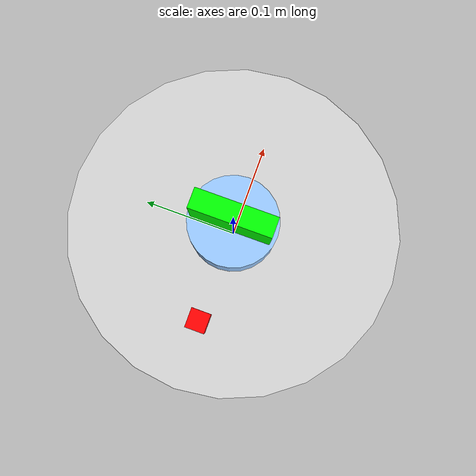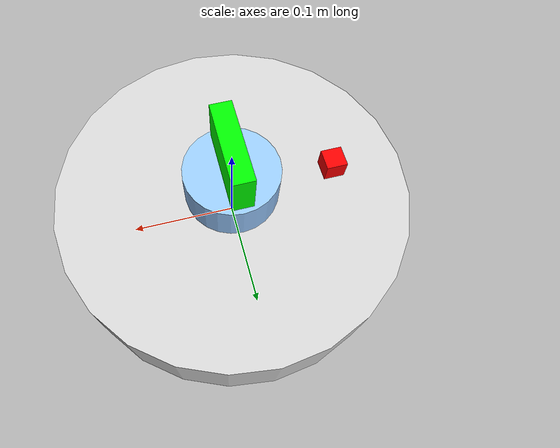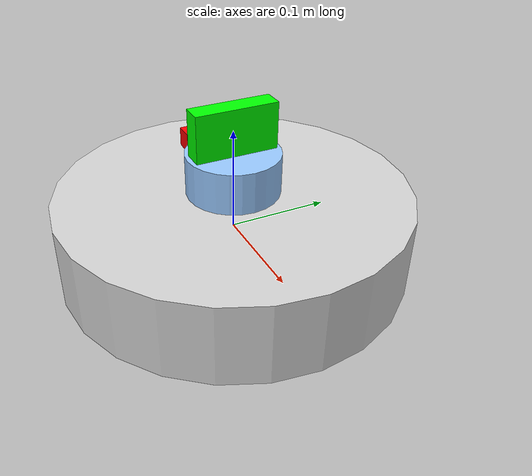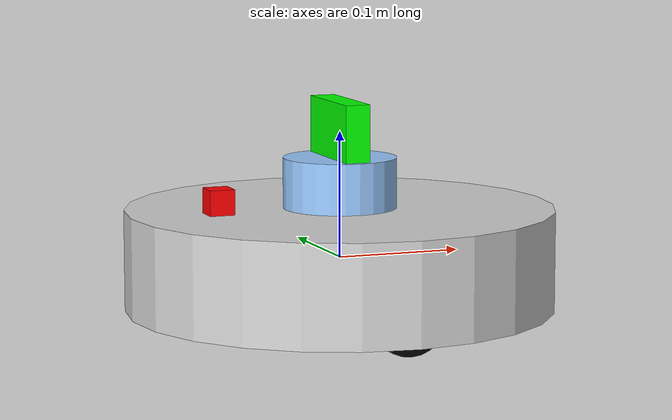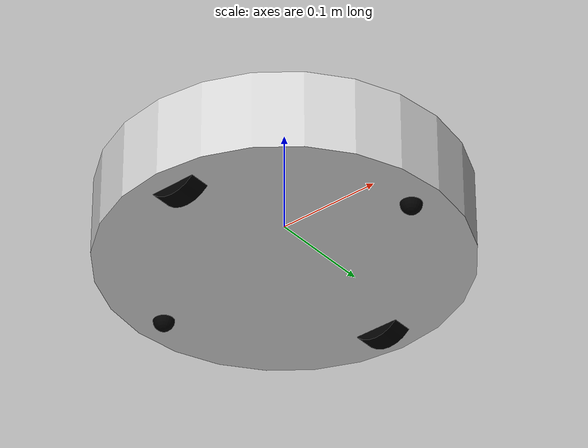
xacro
<?xml version="1.0"?>
<robot xmlns:xacro="http://www.ros.org/wiki/xacro" name="iRobot">

  <!-- MODELS -->
  <xacro:include filename="$(find irobotcreate2)/model/materials.urdf"/>
  <xacro:include filename="$(find irobotcreate2)/model/axis.urdf.xacro"/>
  <xacro:include filename="$(find irobotcreate2)/model/wheel.urdf.xacro"/>
  <xacro:include filename="$(find irobotcreate2)/model/shelf.urdf.xacro"/>
  <xacro:include filename="$(find irobotcreate2)/gazebo/iRobot.gazebo.xacro"/>
  <xacro:include filename="$(find irobotcreate2)/model/hokuyo.urdf.xacro"/>
  <xacro:include filename="$(find irobotcreate2)/model/imu.urdf.xacro"/>
  <xacro:include filename="$(find irobotcreate2)/model/camera.urdf.xacro"/>

  <xacro:property name="pi" value="3.1415926535897931"/>
  <xacro:property name="wheel_mass" value="0.5"/>
  <xacro:property name="sphere_mass" value="0.3"/>

  <link name="base_link">
    <inertial>
        <origin xyz="0 0 0" rpy="0 0 0"/>
        <mass value="0"/>
        <inertia ixx="0.0" ixy="0.0" ixz="0.0" iyy="0.0" iyz="0.0" izz="0.0"/>
    </inertial>
    </link>
    <joint name="base_joint" type="fixed">
        <origin xyz="0 0 0" rpy="0 0 0" />
        <parent link="base_link"/>
        <child link="chassis"/>
    </joint>
    <link name="chassis">
        <inertial>
            <origin xyz="0 0 0" rpy="0 0 0"/>
            <mass value="10"/>
             <inertia ixx="${1/12*10*3*0.17**2+1/12*5*3*0.08**2}" ixy="0.0" ixz="0.0" iyy="${1/12*10*3*0.17**2+1/12*5*3*0.08**2}" iyz="0.0" izz="${1/2*10*0.17**2}"/>
        </inertial>
        <visual>
            <origin xyz="0 0 0" rpy="0 0 0"/>
            <geometry>
                <cylinder length="0.08" radius="0.17"/>
            </geometry>
            <material name="iRobot/LightGrey"/>
        </visual>
        <collision>
            <origin xyz="0 0 0" rpy="0 0 0"/>
            <geometry>
                <cylinder length="0.08" radius="0.17"/>
            </geometry>
        </collision>
    </link>

    <xacro:model_axis name="left_axis"
                      parent="chassis">
    <origin xyz="0 0.14 -0.02" rpy="0 0 0"/>
    </xacro:model_axis>

   <xacro:model_wheel name="left_wheel"
                      parent="left_axis"
                      radius="0.03"
                      width="0.02"
                      mass="${wheel_mass}">
    <origin xyz="0 0 0" rpy="0 0 0"/>
    </xacro:model_wheel>

    <xacro:model_axis name="right_axis"
                      parent="chassis">
    <origin xyz="0 -0.14 -0.02" rpy="0 0 0"/>
    </xacro:model_axis>

    <xacro:model_wheel name="right_wheel"
                      parent="right_axis"
                      radius="0.03"
                      width="0.02"
                      mass="${wheel_mass}">
    <origin xyz="0 0 0" rpy="0 0 0"/>
    </xacro:model_wheel>

    <joint name="sphere_joint1" type="revolute">
        <origin xyz="0.14 0 -0.04" rpy="0 0 0"/>
        <axis xyz="0 0 1"/>
        <limit lower="0" upper="0" effort="100" velocity="100"/>
        <parent link="chassis"/>
        <child link="sphere1"/>
    </joint>
    <link name="sphere1">
        <inertial>
            <origin xyz="0 0 0" rpy="0 0 0"/>
            <mass value="${sphere_mass}"/>
            <inertia ixx="${2/5*sphere_mass*0.01**2}" ixy="0.0" ixz="0.0" iyy="${2/5*sphere_mass*0.01**2}" iyz="0.0" izz="${2/5*sphere_mass*0.01**2}"/>
        </inertial>
        <visual>
            <origin xyz="0 0 0" rpy="0 0 0"/>
            <geometry>
                <sphere radius="0.01"/>
            </geometry>
            <material name="iRobot/Black"/>
        </visual>
        <collision>
            <origin xyz="0 0 0" rpy="0 0 0"/>
            <geometry>
                <sphere radius="0.01"/>
            </geometry>
        </collision>
    </link>

    <joint name="sphere_joint2" type="revolute">
        <origin xyz="-0.14 0 -0.04" rpy="0 0 0"/>
        <axis xyz="0 0 1"/>
        <limit lower="0" upper="0" effort="100" velocity="100"/>
        <parent link="chassis"/>
        <child link="sphere2"/>
    </joint>
    <link name="sphere2">
        <inertial>
            <origin xyz="0 0 0" rpy="0 0 0"/>
            <mass value="${sphere_mass}"/>
            <inertia ixx="${2/5*sphere_mass*0.01**2}" ixy="0.0" ixz="0.0" iyy="${2/5*sphere_mass*0.01**2}" iyz="0.0" izz="${2/5*sphere_mass*0.01**2}"/>
        </inertial>
        <visual>
            <origin xyz="0 0 0" rpy="0 0 0"/>
            <geometry>
                <sphere radius="0.01"/>
            </geometry>
            <material name="iRobot/Black"/>
        </visual>
        <collision>
            <origin xyz="0 0 0" rpy="0 0 0"/>
            <geometry>
                <sphere radius="0.01"/>
            </geometry>
        </collision>
    </link>

    <!-- Laser link and plugin -->
    <xacro:hokuyo_laser xyz="0 0 ${0.04 + 0.02}"
                  rpy="0 0 0"
                  parent="base_link">
    </xacro:hokuyo_laser>

    <!--Imu link and plugin-->
    <xacro:imu_sensor xyz="-0.1 0 ${0.04 + 0.01}"
                  rpy="0 0 0"
                  parent="base_link">
    </xacro:imu_sensor>

    <!--Camera link and plugin-->
    <xacro:camera_sensor xyz="0 0 ${0.04 + 0.02 + 0.04}"
                  rpy="0 0 0"
                  parent="base_link">
    </xacro:camera_sensor>

    <xacro:iRobot_gazebo />
</robot>

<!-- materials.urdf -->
<robot>
  <material name="iRobot/Green">
    <color rgba="0.0 1.0 0.0 1.0"/>
  </material>

  <material name="iRobot/Yellow">
    <color rgba="1.0 1.0 0.0 1.0"/>
  </material>

  <material name="iRobot/LightYellow">
    <color rgba="1.0 1.0 0.6 1.0"/>
  </material>

  <material name="iRobot/Blue">
    <color rgba="0.0 0.0 1.0 1.0"/>
  </material>

  <material name="iRobot/LightBlue">
    <color rgba="0.6 0.79 1.0 1.0"/>
  </material>

  <material name="iRobot/DarkGrey">
    <color rgba="0.31 0.31 0.31 1.0"/>
  </material>

  <material name="iRobot/LightGrey">
    <color rgba="0.83 0.83 0.83 1.0"/>
  </material>

  <material name="iRobot/MediumGrey">
    <color rgba="0.5 0.5 0.5 1.0"/>
  </material>

  <material name="iRobot/Black">
    <color rgba="0.0 0.0 0.0 1.0"/>
  </material>

  <material name="iRobot/Red">
    <color rgba="1.0 0.0 0.0 1.0"/>
  </material>

  <material name="iRobot/Orange">
    <color rgba="1.0 0.65 0.0 1.0"/>
  </material>
</robot>

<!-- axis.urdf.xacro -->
<robot xmlns:xacro="http://www.ros.org/wiki/xacro" name="axis">

    <xacro:include filename="$(find irobotcreate2)/gazebo/axis.gazebo.xacro"/>

    <xacro:property name="pi" value="3.1415926535897931"/>
    <xacro:property name="small_mass" value="0.001"/>

    <xacro:macro name="model_axis" params="name parent *origin">
        <joint name="${name}_base_joint" type="fixed">
            <insert_block name="origin"/>
            <parent link="${parent}"/>
            <child link="${name}"/>
        </joint>
        <link name="${name}">
            <inertial>
                <origin xyz="0 0 0" rpy="${-pi/2} 0 0"/>
                <mass value="${small_mass}"/>
                <inertia ixx="${1/12*small_mass*3*0.0025**2+1/12*small_mass*0.02**2}" ixy="0.0" ixz="0.0" iyy="${1/12*small_mass*3*0.0025**2+1/12*small_mass*0.02**2}" iyz="0.0"
                                izz="${1/12*small_mass*0.0025**2}"/>
            </inertial>
        <visual>
            <origin xyz="0 0 0" rpy="${-pi/2} 0 0"/>
            <geometry>
                <cylinder length="0.02" radius="0.0025"/>
            </geometry>
            <material name="iRobot/MediumGray"/>
        </visual>
        <collision>
            <origin xyz="0 0 0" rpy="${-pi/2} 0 0"/>
            <geometry>
                <cylinder length="0.02" radius="0.0025"/>
            </geometry>
            </collision>
        </link>

        <xacro:axis_gazebo name="${name}"/>

    </xacro:macro>
</robot>

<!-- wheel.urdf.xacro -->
<robot xmlns:xacro="http://www.ros.org/wiki/xacro" name="wheel">

<xacro:include filename="$(find irobotcreate2)/gazebo/wheel.gazebo.xacro"/>

<xacro:property name="pi" value="3.1415926535897931"/>

<xacro:macro name="model_wheel" params="name parent radius width mass *origin">
    <joint name="${name}_rot_joint" type="continuous">
        <insert_block name="origin"/>
        <axis xyz="0 1 0"/>
        <limit effort="100" velocity="100"/>
        <joint_properties damping="0.0" friction="0.0"/>
        <parent link="${parent}"/>
        <child link="${name}_link"/>
    </joint>
    <link name="${name}_link">
        <inertial>
            <origin xyz="0 0.01 0" rpy="${-pi/2} 0 0"/>
            <mass value="${mass}"/>
            <inertia ixx="${1/12*mass*3*radius**2+1/12*mass*width**2}" ixy="0.0" ixz="0.0" iyy="${1/12*mass*3*radius**2+1/12*mass*width**2}" iyz="0.0" izz="${1/12*mass*radius**2}"/>
        </inertial>
        <visual>
            <origin xyz="0 0 0" rpy="${-pi/2} 0 0"/>
            <geometry>
                <cylinder length="${width}" radius="${radius}"/>
            </geometry>
            <material name="iRobot/Black"/>
        </visual>
        <collision>
            <origin xyz="0 0 0" rpy="${-pi/2} 0 0"/>
            <geometry>
                <cylinder length="${width}" radius="${radius}"/>
            </geometry>
        </collision>
    </link>

    <xacro:wheel_gazebo name="${name}"/>

</xacro:macro>
</robot>

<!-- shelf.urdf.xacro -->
<robot xmlns:xacro="http://www.ros.org/wiki/xacro" name="shelf">

<xacro:property name="pi" value="3.1415926535897931"/>
<xacro:property name="width_shelf" value="0.005" />
<xacro:property name="radius" value="0.002" />

<xacro:macro name="model_shelf" params="name parent height">
    <joint name="${name}1_rot_joint" type="fixed">
        <origin xyz="0.1 0.1 ${height/2-width_shelf/2}" rpy="0 0 0"/>
        <parent link="${parent}"/>
        <child link="${name}1_link"/>
    </joint>
    <link name="${name}1_link">
        <inertial>
            <origin xyz="0 0 0" rpy="0 0 0"/>
            <mass value="0.01"/>
            <inertia ixx="0.00001" ixy="0.0" ixz="0.0" iyy="0.00001" iyz="0.0" izz="0.0001"/>
        </inertial>
        <visual>
            <origin xyz="0 0 0" rpy="0 0 0"/>
            <geometry>
                <cylinder length="${height-width_shelf}" radius="${radius}"/>
            </geometry>
            <material name="iRobot/Grey"/>
        </visual>
        <collision>
            <origin xyz="0 0 0" rpy="0 0 0"/>
            <geometry>
                <cylinder length="${height-width_shelf}" radius="${radius}"/>
            </geometry>
        </collision>
    </link>

    <joint name="${name}2_rot_joint" type="fixed">
        <origin xyz="0.1 -0.1 ${height/2-width_shelf/2}" rpy="0 0 0"/>
        <parent link="${parent}"/>
        <child link="${name}2_link"/>
    </joint>
    <link name="${name}2_link">
        <inertial>
            <origin xyz="0 0 0" rpy="0 0 0"/>
            <mass value="0.01"/>
            <inertia ixx="0.00001" ixy="0.0" ixz="0.0" iyy="0.00001" iyz="0.0" izz="0.0001"/>
        </inertial>
        <visual>
            <origin xyz="0 0 0" rpy="0 0 0"/>
            <geometry>
                <cylinder length="${height-width_shelf}" radius="${radius}"/>
            </geometry>
            <material name="iRobot/Grey"/>
        </visual>
        <collision>
            <origin xyz="0 0 0" rpy="0 0 0"/>
            <geometry>
                <cylinder length="${height-width_shelf}" radius="${radius}"/>
            </geometry>
        </collision>
    </link>

    <joint name="${name}3_rot_joint" type="fixed">
        <origin xyz="-0.1 -0.1 ${height/2-width_shelf/2}" rpy="0 0 0"/>
        <parent link="${parent}"/>
        <child link="${name}3_link"/>
    </joint>
    <link name="${name}3_link">
        <inertial>
            <origin xyz="0 0 0" rpy="0 0 0"/>
            <mass value="0.01"/>
            <inertia ixx="0.00001" ixy="0.0" ixz="0.0" iyy="0.00001" iyz="0.0" izz="0.0001"/>
        </inertial>
        <visual>
            <origin xyz="0 0 0" rpy="0 0 0"/>
            <geometry>
                <cylinder length="${height-width_shelf}" radius="${radius}"/>
            </geometry>
            <material name="iRobot/Grey"/>
        </visual>
        <collision>
            <origin xyz="0 0 0" rpy="0 0 0"/>
            <geometry>
                <cylinder length="${height-width_shelf}" radius="${radius}"/>
            </geometry>
        </collision>
    </link>

    <joint name="${name}4_rot_joint" type="fixed">
        <origin xyz="-0.1 0.1 ${height/2-width_shelf/2}" rpy="0 0 0"/>
        <parent link="${parent}"/>
        <child link="${name}4_link"/>
    </joint>
    <link name="${name}4_link">
        <inertial>
            <origin xyz="0 0 0" rpy="0 0 0"/>
            <mass value="0.01"/>
            <inertia ixx="0.00001" ixy="0.0" ixz="0.0" iyy="0.00001" iyz="0.0" izz="0.0001"/>
        </inertial>
        <visual>
            <origin xyz="0 0 0" rpy="0 0 0"/>
            <geometry>
                <cylinder length="${height-width_shelf}" radius="${radius}"/>
            </geometry>
            <material name="iRobot/Grey"/>
        </visual>
        <collision>
            <origin xyz="0 0 0" rpy="0 0 0"/>
            <geometry>
                <cylinder length="${height-width_shelf}" radius="${radius}"/>
            </geometry>
        </collision>
    </link>

    <joint name="${name}_shelf_joint" type="fixed">
        <origin xyz="0 0 ${height-width_shelf}" rpy="0 0 0"/>
        <parent link="${parent}"/>
        <child link="${name}"/>
    </joint>
    <link name="${name}">
        <inertial>
            <origin xyz="0 0 0" rpy="0 0 0"/>
            <mass value="0.01"/>
            <inertia ixx="0.00001" ixy="0.0" ixz="0.0" iyy="0.00001" iyz="0.0" izz="0.0001"/>
        </inertial>
        <visual>
            <origin xyz="0 0 0" rpy="0 0 0"/>
            <geometry>
                <cylinder length="${width_shelf}" radius="0.15"/>
            </geometry>
            <material name="iRobot/Grey"/>
        </visual>
        <collision>
            <origin xyz="0 0 0" rpy="0 0 0"/>
            <geometry>
                <cylinder length="${width_shelf}" radius="0.15"/>
            </geometry>
        </collision>
    </link>

</xacro:macro>
</robot>

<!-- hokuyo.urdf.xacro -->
<robot xmlns:xacro="http://www.ros.org/wiki/xacro" name="hokuyo">

<xacro:macro name="hokuyo_laser" params="xyz rpy parent">
    <joint name="hokuyo_laser_joint" type="fixed">
        <axis xyz="0 0 1" />
        <origin xyz="${xyz}" rpy="${rpy}"/>
        <parent link="${parent}"/>
        <child link="hokuyo_laser_link"/>
    </joint>

    <link name="hokuyo_laser_link">
        <collision>
            <origin xyz="0 0 0" rpy="0 0 0"/>
            <geometry>
                <cylinder length="0.04" radius="0.045"/>
            </geometry>
        </collision>
        <visual>
            <origin xyz="0 0 0" rpy="0 0 0"/>
            <geometry>
                <cylinder length="0.04" radius="0.045"/>
            </geometry>
            <material name="iRobot/LightBlue"/>
        </visual>
        <inertial>
            <mass value="1e-5" />
            <origin xyz="0 0 0" rpy="0 0 0"/>
            <inertia ixx="1e-6" ixy="0" ixz="0" iyy="1e-6" iyz="0" izz="1e-6" />
        </inertial>
    </link>

    <gazebo reference="hokuyo_laser_link">
        <gravity>true</gravity>
        <sensor type="ray" name="head_hokuyo_sensor">
            <pose>0 0 0 0 0 0</pose>
            <visualize>true</visualize>
            <update_rate>40</update_rate>
            <ray>
                <scan>
                    <horizontal>
                        <samples>360</samples>
                        <resolution>1</resolution>
                        <min_angle>-3.14159</min_angle>
                        <max_angle>3.14159</max_angle>
                    </horizontal>
                </scan>
                <range>
                    <min>0.2</min>
                    <max>40</max>
                    <resolution>0.025</resolution>
                </range>
                <noise>
                    <type>gaussian</type>
                    <mean>0.0</mean>
                    <stddev>0.0</stddev>
                </noise>
            </ray>
            <plugin name="gazebo_ros_head_hokuyo_controller" filename="libgazebo_ros_laser.so">
                <robotNamespace></robotNamespace>
                <topicName>laser_scan</topicName>
                <frameName>hokuyo_laser_link</frameName>
            </plugin>
        </sensor>
    </gazebo>

</xacro:macro>

</robot>

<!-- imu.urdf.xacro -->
<robot xmlns:xacro="http://www.ros.org/wiki/xacro" name="imu">

<xacro:macro name="imu_sensor" params="xyz rpy parent">
    <joint name="imu_sensor_joint" type="fixed">
        <axis xyz="0 0 1" />
        <origin xyz="${xyz}" rpy="${rpy}"/>
        <parent link="${parent}"/>
        <child link="imu_sensor_link"/>
    </joint>

    <link name="imu_sensor_link">
        <collision>
            <origin xyz="0 0 0" rpy="0 0 0"/>
            <geometry>
                <box size="0.02 0.02 0.02"/>
            </geometry>
        </collision>
        <visual>
            <origin xyz="0 0 0" rpy="0 0 0"/>
            <geometry>
                <box size="0.02 0.02 0.02"/>
            </geometry>
            <material name="iRobot/Red"/>
        </visual>
        <inertial>
            <mass value="0.001" />
            <origin xyz="0 0 0" rpy="0 0 0"/>
            <inertia ixx="0.00000015" ixy="0" ixz="0" iyy="0.00000015" iyz="0" izz="0.00000015" />
        </inertial>
    </link>

    <gazebo reference="imu_sensor_link">
        <gravity>true</gravity>
        <sensor name='imu_sensor' type='imu'>
            <always_on>1</always_on>
            <update_rate>1000</update_rate>
            <visualize>1</visualize>
            <topic>__default_topic__</topic>
            <plugin name='imu_plugin' filename='libgazebo_ros_imu_sensor.so'>
                <topicName>imu_data</topicName>
                <bodyName>imu_sensor_link</bodyName>
                <updateRateHZ>10.0</updateRateHZ>
                <gaussianNoise>0.0</gaussianNoise>
                <xyzOffset>0 0 0</xyzOffset>
                <rpyOffset>0 0 0</rpyOffset>
            </plugin>
            <pose>0 0 0 0 0 0</pose>
        </sensor>
    </gazebo>

</xacro:macro>

</robot>

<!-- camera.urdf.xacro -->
<robot xmlns:xacro="http://www.ros.org/wiki/xacro" name="camera">

    <xacro:property name="pi" value="3.1415926535897931"/>

    <xacro:macro name="camera_sensor" params="xyz rpy parent">
        <joint name="camera_sensor_joint" type="fixed">
            <axis xyz="0 1 0" />
            <origin xyz="${xyz}" rpy="${rpy}"/>
            <parent link="${parent}"/>
            <child link="camera_link"/>
        </joint>

        <link name="camera_link">
            <collision>
                <origin xyz="0 0 0" rpy="0 0 0"/>
                <geometry>
                    <box size="0.02 0.08 0.05"/>
                </geometry>
            </collision>
            <visual>
                <origin xyz="0 0 0" rpy="0 0 0"/>
                <geometry>
                    <box size="0.02 0.08 0.05"/>
                </geometry>
                <material name="iRobot/Green"/>
            </visual>
            <inertial>
                <mass value="0.0001" />
                <origin xyz="0 0 0" rpy="0 0 ${pi}"/>
                <inertia ixx="0.0000001" ixy="0" ixz="0" iyy="0.0000001" iyz="0" izz="0.0000001" />
            </inertial>
        </link>

        <gazebo reference="camera_link">
            <sensor type="camera" name="camera">
                <update_rate>30.0</update_rate>
                <camera name="head">
                    <horizontal_fov>1.3962634</horizontal_fov>
                    <image>
                        <width>800</width>
                        <height>600</height>
                        <format>R8G8B8</format>
                    </image>
                    <clip>
                        <near>0.02</near>
                        <far>300</far>
                    </clip>
                    <noise>
                        <type>gaussian</type>
                        <mean>0.0</mean>
                        <stddev>0.007</stddev>
                    </noise>
                </camera>
                <plugin name="camera_controller" filename="libgazebo_ros_camera.so">
                    <alwaysOn>true</alwaysOn>
                    <updateRate>0.0</updateRate>
                    <cameraName>iRobot/camera</cameraName>
                    <imageTopicName>image_raw</imageTopicName>
                    <cameraInfoTopicName>camera_info</cameraInfoTopicName>
                    <frameName>camera_link</frameName>
                    <hackBaseline>0.07</hackBaseline>
                    <distortionK1>0.0</distortionK1>
                    <distortionK2>0.0</distortionK2>
                    <distortionK3>0.0</distortionK3>
                    <distortionT1>0.0</distortionT1>
                    <distortionT2>0.0</distortionT2>
                </plugin>
            </sensor>
    </gazebo>

    </xacro:macro>

</robot>
